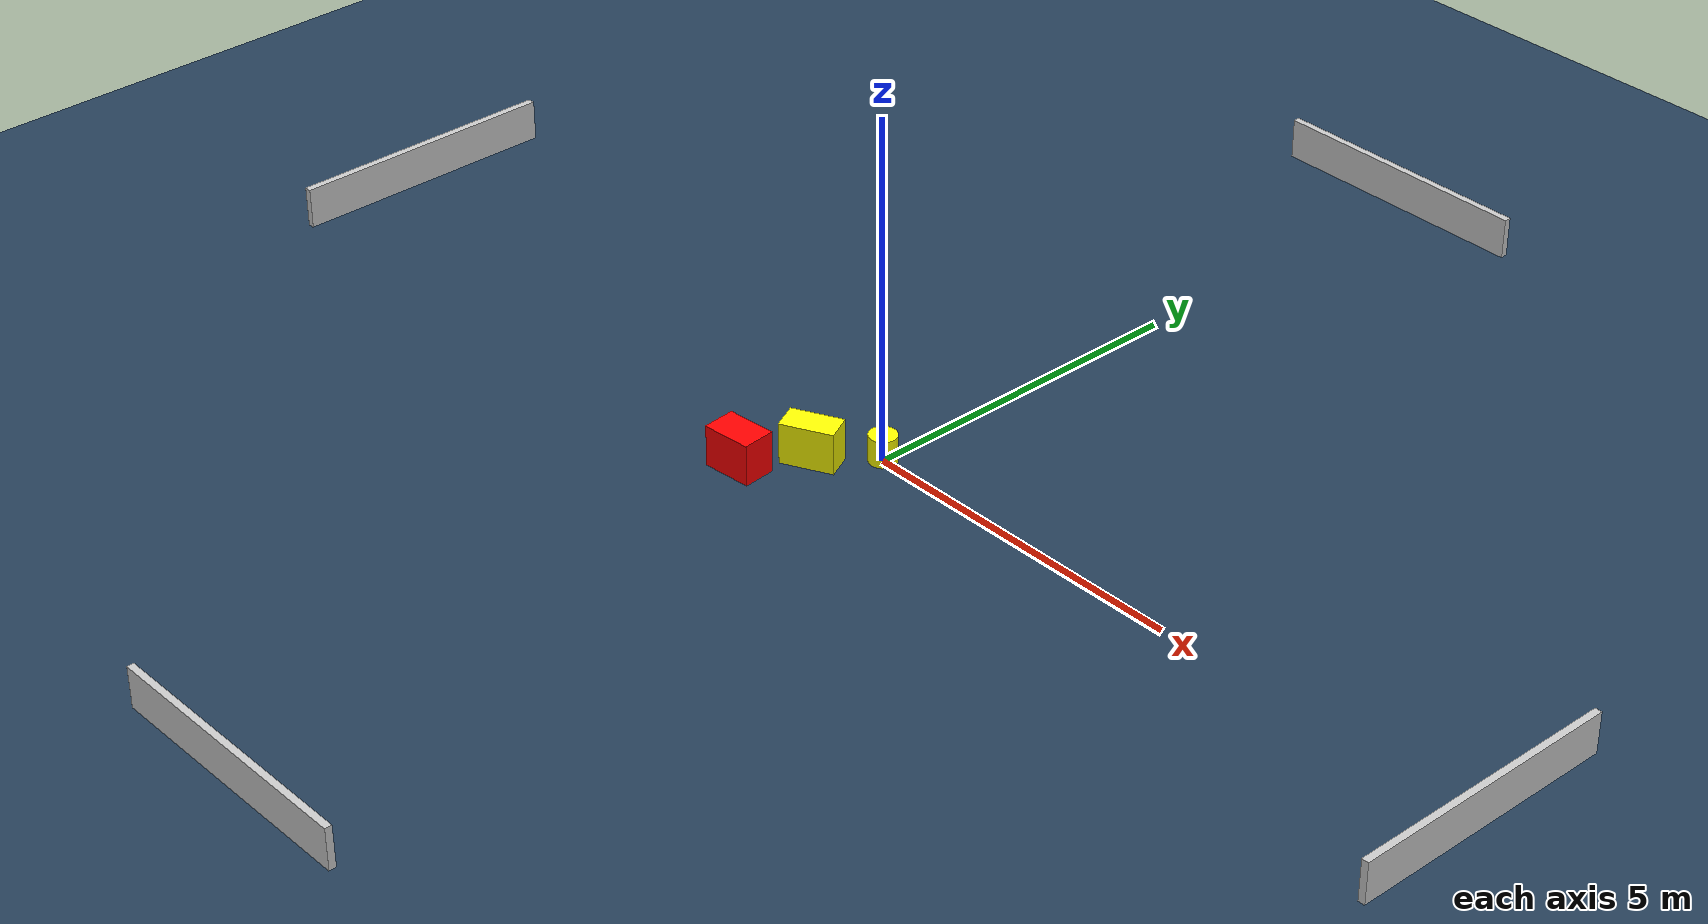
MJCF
<?xml version="1.0" ?>
<mujoco model="generated_environment">
  <option timestep="0.01" integrator="RK4" cone="elliptic"/>
  <default>
    <geom density="1"/>
  </default>
  <asset>
    <texture builtin="gradient" height="3072" name="skybox" rgb1="0.3 0.5 0.7" rgb2="0 0 0" type="skybox" width="512"/>
    <texture builtin="checker" height="300" name="groundplane" rgb1="0.2 0.3 0.4" rgb2="0.1 0.2 0.3" type="2d" width="300"/>
    <material name="groundplane" reflectance="0.2" texrepeat="5 5" texture="groundplane"/>
  </asset>
  <worldbody>
    <light dir="0 0 -1" directional="true" pos="0 0 1.5"/>
    <geom condim="3" friction="0.5 0.005 0.001" material="groundplane" name="floor" pos="0 0 0" size="0 0 0.05" type="plane"/>
    <body name="walls">
      <geom name="wall_1" condim="4" pos="-10.0 0.0 0.3" rgba="0.800000011920929 0.800000011920929 0.800000011920929 1.0" size="0.05 2.0 0.3" type="box"/>
      <geom name="wall_2" condim="4" pos="10.0 0.0 0.3" rgba="0.800000011920929 0.800000011920929 0.800000011920929 1.0" size="0.05 2.0 0.3" type="box"/>
      <geom name="wall_3" condim="4" pos="0.0 -10.0 0.3" rgba="0.800000011920929 0.800000011920929 0.800000011920929 1.0" size="2.0 0.05 0.3" type="box"/>
      <geom name="wall_4" condim="4" pos="0.0 10.0 0.3" rgba="0.800000011920929 0.800000011920929 0.800000011920929 1.0" size="2.0 0.05 0.3" type="box"/>
    </body>
    <body name="robot">
      <joint name="joint_x" type="slide" pos="0 0 0" axis="1 0 0"/>
      <joint name="joint_y" type="slide" pos="0 0 0" axis="0 1 0"/>
      <geom name="robot" type="cylinder" pos="0.0 0.0 0.2" size="0.2 0.2 0.0" mass="5.0" friction="1.0 0.005 0.0001" condim="4" rgba="1.0 1.0 0.0 1.0"/>
    </body>
    <body name="obstacle_1_movable">
      <geom name="obstacle_1_movable" condim="4" pos="-0.607403309899832 -0.6829046585995369 0.3" euler="0 0 296.37616314027065" friction="0.0 0.005 0.001" rgba="1.0 1.0 0.0 1.0" size="0.20584129248771996 0.3823987039148592 0.3" type="box" mass="0.1"/>
      <joint type="free"/>
    </body>
    <body name="obstacle_2_static">
      <geom name="obstacle_2_static" condim="4" pos="-1.1058698517236454 -1.4910013441704697 0.3" euler="0 0 185.33010325547542" friction="0.0 0.005 0.001" rgba="1.0 0.0 0.0 1.0" size="0.3619746199615995 0.23847284898014576 0.3" type="box"/>
    </body>
  </worldbody>
  <actuator>
    <motor name="actuator_x" joint="joint_x" gear="1" ctrlrange="-1 1"/>
    <motor name="actuator_y" joint="joint_y" gear="1" ctrlrange="-1 1"/>
  </actuator>
</mujoco>
